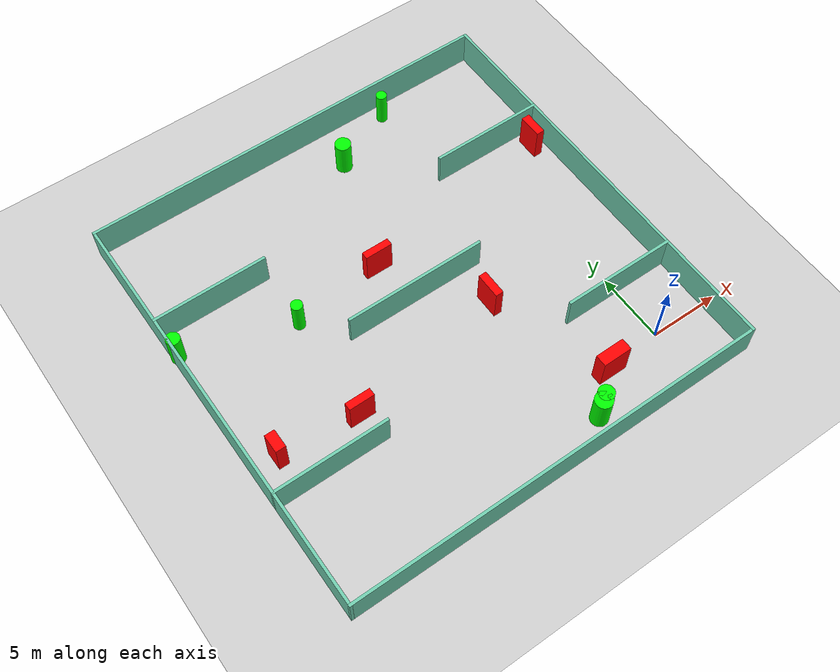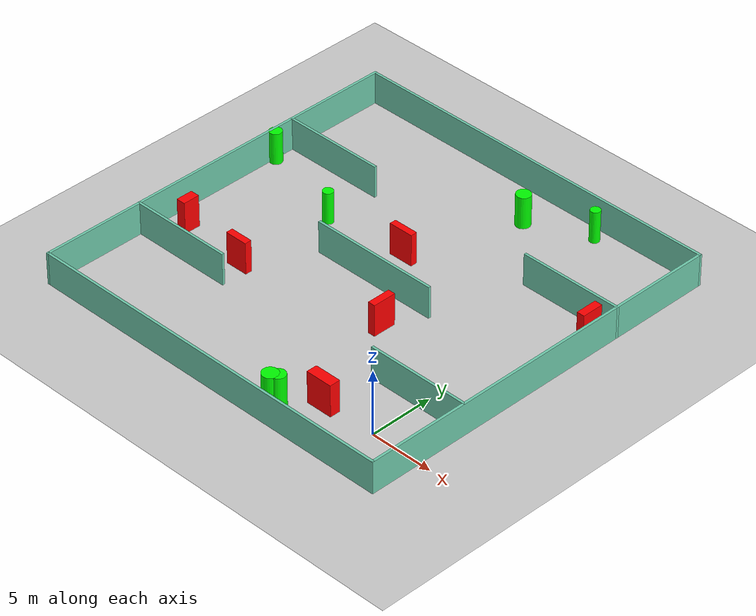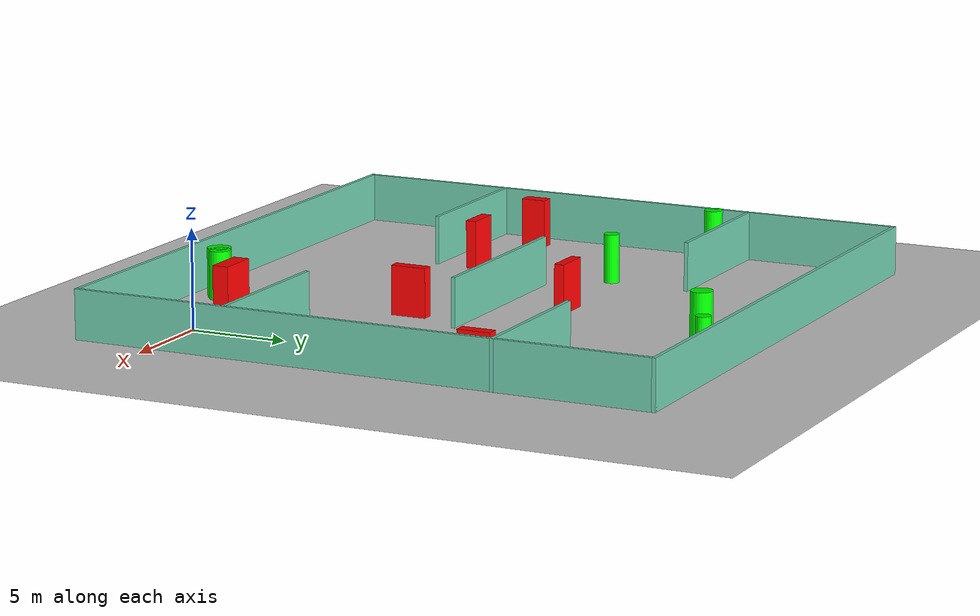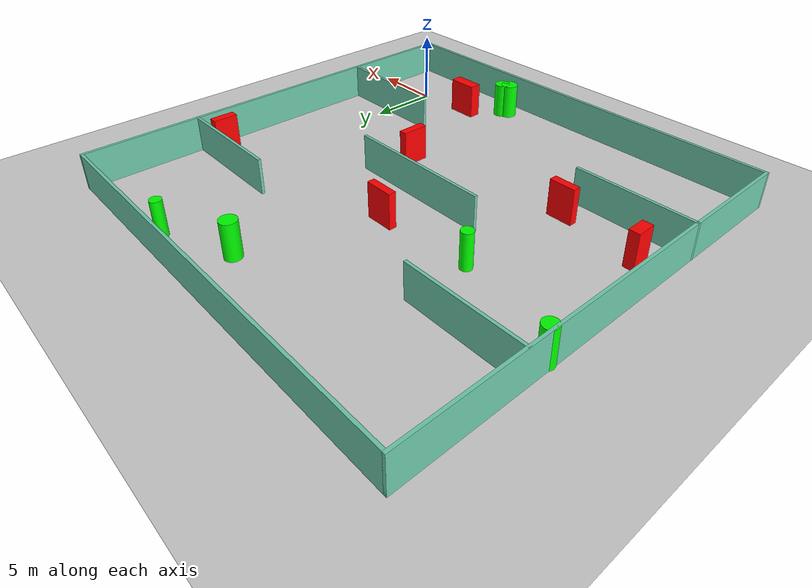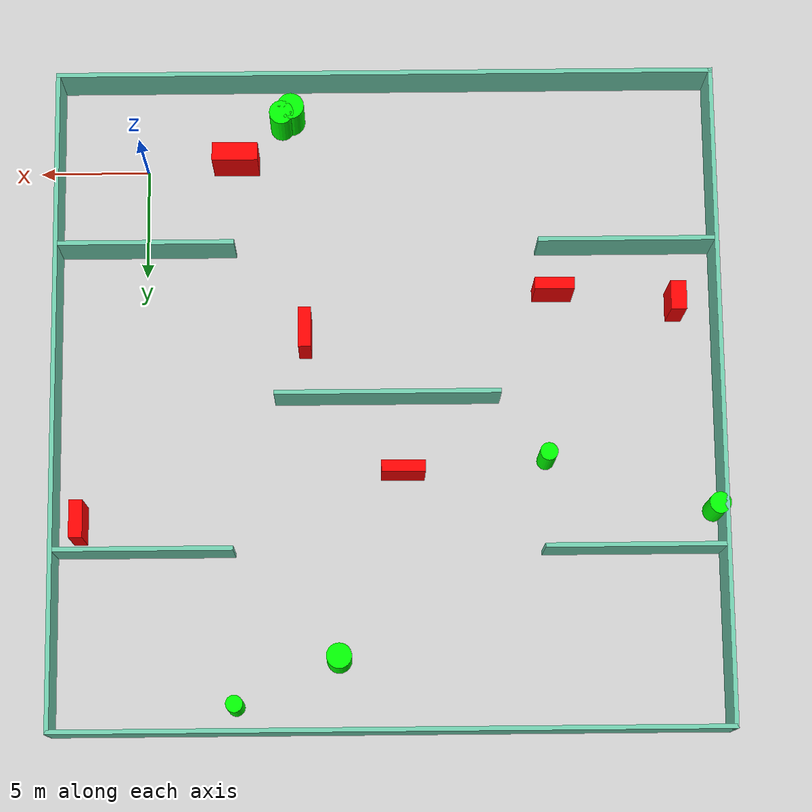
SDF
<sdf version="1.7">
 <world name="default">
  <light name="sun" type="directional">
   <pose>0 0 10 0 -0 0</pose>
   <diffuse>0.8 0.8 0.8 1</diffuse>
   <specular>0.2 0.2 0.2 1</specular>
   <attenuation>
    <range>1000</range>
    <constant>0.9</constant>
    <linear>0.01</linear>
    <quadratic>0.001</quadratic>
   </attenuation>
   <direction>-0.5 0.1 -0.9</direction>
   <spot><inner_angle>0</inner_angle><outer_angle>0</outer_angle><falloff>0</falloff></spot>
  </light>
  <model name="ground_plane">
   <static>1</static>
   <link name="link">
    <collision name="collision">
     <geometry><plane><normal>0 0 1</normal><size>100 100</size></plane></geometry>
     <surface>
      <contact><collide_bitmask>65535</collide_bitmask></contact>
      <friction><ode><mu>100</mu><mu2>50</mu2></ode></friction>
     </surface>
    </collision>
    <visual name="visual">
     <cast_shadows>0</cast_shadows>
     <geometry><plane><normal>0 0 1</normal><size>100 100</size></plane></geometry>
     <material>
      <script><uri>file://media/materials/scripts/gazebo.material</uri><name>Gazebo/Grey</name></script>
     </material>
    </visual>
   </link>
  </model>
  <gravity>0 0 -9.8</gravity>
  <magnetic_field>6e-06 2.3e-05 -4.2e-05</magnetic_field>
  <atmosphere type="adiabatic"/>
  <physics type="ode">
   <max_step_size>0.001</max_step_size>
   <real_time_factor>1</real_time_factor>
   <real_time_update_rate>1000</real_time_update_rate>
  </physics>
  <scene><ambient>0.4 0.4 0.4 1</ambient><background>0.7 0.7 0.7 1</background><shadows>1</shadows></scene>
  <spherical_coordinates>
   <surface_model>EARTH_WGS84</surface_model>
   <latitude_deg>0</latitude_deg>
   <longitude_deg>0</longitude_deg>
   <elevation>0</elevation>
   <heading_deg>0</heading_deg>
  </spherical_coordinates>
  <model name="my_base_walls">
   <link name="Wall_10">
    <collision name="Wall_10_Collision">
     <geometry><box><size>8.2 0.2 2.5</size></box></geometry>
     <pose>0 0 1.25 0 -0 0</pose>
    </collision>
    <visual name="Wall_10_Visual">
     <pose>0 0 1.25 0 -0 0</pose>
     <geometry><box><size>8.2 0.2 2.5</size></box></geometry>
     <material>
      <script><uri>file://media/materials/scripts/gazebo.material</uri><name>Gazebo/Grey</name></script>
      <ambient>0.435294 0.796078 0.67451 1</ambient>
     </material>
     <meta><layer>0</layer></meta>
    </visual>
    <pose>-11 -7 0 0 -0 0</pose>
   </link>
   <link name="Wall_12">
    <collision name="Wall_12_Collision">
     <geometry><box><size>8.2 0.2 2.5</size></box></geometry>
     <pose>0 0 1.25 0 -0 0</pose>
    </collision>
    <visual name="Wall_12_Visual">
     <pose>0 0 1.25 0 -0 0</pose>
     <geometry><box><size>8.2 0.2 2.5</size></box></geometry>
     <material>
      <script><uri>file://media/materials/scripts/gazebo.material</uri><name>Gazebo/Grey</name></script>
      <ambient>0.435294 0.796078 0.67451 1</ambient>
     </material>
     <meta><layer>0</layer></meta>
    </visual>
    <pose>-11 7 0 0 -0 0</pose>
   </link>
   <link name="Wall_14">
    <collision name="Wall_14_Collision">
     <geometry><box><size>8.2 0.2 2.5</size></box></geometry>
     <pose>0 0 1.25 0 -0 0</pose>
    </collision>
    <visual name="Wall_14_Visual">
     <pose>0 0 1.25 0 -0 0</pose>
     <geometry><box><size>8.2 0.2 2.5</size></box></geometry>
     <material>
      <script><uri>file://media/materials/scripts/gazebo.material</uri><name>Gazebo/Grey</name></script>
      <ambient>0.435294 0.796078 0.67451 1</ambient>
     </material>
     <meta><layer>0</layer></meta>
    </visual>
    <pose>11 7 0 0 -0 3.14159</pose>
   </link>
   <link name="Wall_16">
    <collision name="Wall_16_Collision">
     <geometry><box><size>10.2 0.2 2.5</size></box></geometry>
     <pose>0 0 1.25 0 -0 0</pose>
    </collision>
    <visual name="Wall_16_Visual">
     <pose>0 0 1.25 0 -0 0</pose>
     <geometry><box><size>10.2 0.2 2.5</size></box></geometry>
     <material>
      <script><uri>file://media/materials/scripts/gazebo.material</uri><name>Gazebo/Grey</name></script>
      <ambient>0.435294 0.796078 0.67451 1</ambient>
     </material>
     <meta><layer>0</layer></meta>
    </visual>
    <pose>0 0 0 0 -0 3.14159</pose>
   </link>
   <link name="Wall_2">
    <collision name="Wall_2_Collision">
     <geometry><box><size>30.2 0.2 2.5</size></box></geometry>
     <pose>0 0 1.25 0 -0 0</pose>
    </collision>
    <visual name="Wall_2_Visual">
     <pose>0 0 1.25 0 -0 0</pose>
     <geometry><box><size>30.2 0.2 2.5</size></box></geometry>
     <material>
      <script><uri>file://media/materials/scripts/gazebo.material</uri><name>Gazebo/Grey</name></script>
      <ambient>0.435294 0.796078 0.67451 1</ambient>
     </material>
     <meta><layer>0</layer></meta>
    </visual>
    <pose>0 -15 0 0 -0 3.14159</pose>
   </link>
   <link name="Wall_3">
    <collision name="Wall_3_Collision">
     <geometry><box><size>30.2 0.2 2.5</size></box></geometry>
     <pose>0 0 1.25 0 -0 0</pose>
    </collision>
    <visual name="Wall_3_Visual">
     <pose>0 0 1.25 0 -0 0</pose>
     <geometry><box><size>30.2 0.2 2.5</size></box></geometry>
     <material>
      <script><uri>file://media/materials/scripts/gazebo.material</uri><name>Gazebo/Grey</name></script>
      <ambient>0.435294 0.796078 0.67451 1</ambient>
     </material>
     <meta><layer>0</layer></meta>
    </visual>
    <pose>-15 0 0 0 -0 1.5708</pose>
   </link>
   <link name="Wall_4">
    <collision name="Wall_4_Collision">
     <geometry><box><size>30.2 0.2 2.5</size></box></geometry>
     <pose>0 0 1.25 0 -0 0</pose>
    </collision>
    <visual name="Wall_4_Visual">
     <pose>0 0 1.25 0 -0 0</pose>
     <geometry><box><size>30.2 0.2 2.5</size></box></geometry>
     <material>
      <script><uri>file://media/materials/scripts/gazebo.material</uri><name>Gazebo/Grey</name></script>
      <ambient>0.435294 0.796078 0.67451 1</ambient>
     </material>
     <meta><layer>0</layer></meta>
    </visual>
    <pose>0 15 0 0 -0 0</pose>
   </link>
   <link name="Wall_6">
    <collision name="Wall_6_Collision">
     <geometry><box><size>30.2 0.2 2.5</size></box></geometry>
     <pose>0 0 1.25 0 -0 0</pose>
    </collision>
    <visual name="Wall_6_Visual">
     <pose>0 0 1.25 0 -0 0</pose>
     <geometry><box><size>30.2 0.2 2.5</size></box></geometry>
     <material>
      <script><uri>file://media/materials/scripts/gazebo.material</uri><name>Gazebo/Grey</name></script>
      <ambient>0.435294 0.796078 0.67451 1</ambient>
     </material>
     <meta><layer>0</layer></meta>
    </visual>
    <pose>15 0 0 0 -0 1.5708</pose>
   </link>
   <link name="Wall_8">
    <collision name="Wall_8_Collision">
     <geometry><box><size>8.2 0.2 2.5</size></box></geometry>
     <pose>0 0 1.25 0 -0 0</pose>
    </collision>
    <visual name="Wall_8_Visual">
     <pose>0 0 1.25 0 -0 0</pose>
     <geometry><box><size>8.2 0.2 2.5</size></box></geometry>
     <material>
      <script><uri>file://media/materials/scripts/gazebo.material</uri><name>Gazebo/Grey</name></script>
      <ambient>0.435294 0.796078 0.67451 1</ambient>
     </material>
     <meta><layer>0</layer></meta>
    </visual>
    <pose>11 -7 0 0 -0 3.14159</pose>
   </link>
   <static>1</static>
   <pose>-11 11 0 0 -0 0</pose>
  </model>
  <model name="cylinder1">
   <static>1</static>
   <link name="link">
    <inertial>
     <mass>1</mass>
     <inertia><ixx>0.5</ixx><ixy>0</ixy><ixz>0</ixz><iyy>0.5</iyy><iyz>0</iyz><izz>1</izz></inertia>
    </inertial>
    <collision name="collision">
     <geometry><cylinder><radius>0.563916918336461</radius><length>2.5</length></cylinder></geometry>
    </collision>
    <visual name="visual">
     <geometry><cylinder><radius>0.563916918336461</radius><length>2.5</length></cylinder></geometry>
     <material>
      <ambient>0 1 0 1</ambient>
      <diffuse>0 1 0 1</diffuse>
      <specular>0.1 0.1 0.1 1</specular>
      <emissive>0 0 0 0</emissive>
     </material>
    </visual>
   </link>
   <pose>-8.745226525697907 22.787873536315026 1.25 0 0 0</pose>
  </model>
  <model name="cylinder2">
   <static>1</static>
   <link name="link">
    <inertial>
     <mass>1</mass>
     <inertia><ixx>0.5</ixx><ixy>0</ixy><ixz>0</ixz><iyy>0.5</iyy><iyz>0</iyz><izz>1</izz></inertia>
    </inertial>
    <collision name="collision">
     <geometry><cylinder><radius>0.48299650459823285</radius><length>2.5</length></cylinder></geometry>
    </collision>
    <visual name="visual">
     <geometry><cylinder><radius>0.48299650459823285</radius><length>2.5</length></cylinder></geometry>
     <material>
      <ambient>0 1 0 1</ambient>
      <diffuse>0 1 0 1</diffuse>
      <specular>0.1 0.1 0.1 1</specular>
      <emissive>0 0 0 0</emissive>
     </material>
    </visual>
   </link>
   <pose>-25.698874206717065 16.16852797347193 1.25 0 0 0</pose>
  </model>
  <model name="cylinder3">
   <static>1</static>
   <link name="link">
    <inertial>
     <mass>1</mass>
     <inertia><ixx>0.5</ixx><ixy>0</ixy><ixz>0</ixz><iyy>0.5</iyy><iyz>0</iyz><izz>1</izz></inertia>
    </inertial>
    <collision name="collision">
     <geometry><cylinder><radius>0.6094528079168212</radius><length>2.5</length></cylinder></geometry>
    </collision>
    <visual name="visual">
     <geometry><cylinder><radius>0.6094528079168212</radius><length>2.5</length></cylinder></geometry>
     <material>
      <ambient>0 1 0 1</ambient>
      <diffuse>0 1 0 1</diffuse>
      <specular>0.1 0.1 0.1 1</specular>
      <emissive>0 0 0 0</emissive>
     </material>
    </visual>
   </link>
   <pose>-6.6843875109344175 -2.428036210778997 1.25 0 0 0</pose>
  </model>
  <model name="cylinder4">
   <static>1</static>
   <link name="link">
    <inertial>
     <mass>1</mass>
     <inertia><ixx>0.5</ixx><ixy>0</ixy><ixz>0</ixz><iyy>0.5</iyy><iyz>0</iyz><izz>1</izz></inertia>
    </inertial>
    <collision name="collision">
     <geometry><cylinder><radius>0.5544207084066255</radius><length>2.5</length></cylinder></geometry>
    </collision>
    <visual name="visual">
     <geometry><cylinder><radius>0.5544207084066255</radius><length>2.5</length></cylinder></geometry>
     <material>
      <ambient>0 1 0 1</ambient>
      <diffuse>0 1 0 1</diffuse>
      <specular>0.1 0.1 0.1 1</specular>
      <emissive>0 0 0 0</emissive>
     </material>
    </visual>
   </link>
   <pose>-6.251016625709466 -2.131461413774503 1.25 0 0 0</pose>
  </model>
  <model name="cylinder5">
   <static>1</static>
   <link name="link">
    <inertial>
     <mass>1</mass>
     <inertia><ixx>0.5</ixx><ixy>0</ixy><ixz>0</ixz><iyy>0.5</iyy><iyz>0</iyz><izz>1</izz></inertia>
    </inertial>
    <collision name="collision">
     <geometry><cylinder><radius>0.38254730222692235</radius><length>2.5</length></cylinder></geometry>
    </collision>
    <visual name="visual">
     <geometry><cylinder><radius>0.38254730222692235</radius><length>2.5</length></cylinder></geometry>
     <material>
      <ambient>0 1 0 1</ambient>
      <diffuse>0 1 0 1</diffuse>
      <specular>0.1 0.1 0.1 1</specular>
      <emissive>0 0 0 0</emissive>
     </material>
    </visual>
   </link>
   <pose>-4.15429777759514 24.841743219921383 1.25 0 0 0</pose>
  </model>
  <model name="cylinder6">
   <static>1</static>
   <link name="link">
    <inertial>
     <mass>1</mass>
     <inertia><ixx>0.5</ixx><ixy>0</ixy><ixz>0</ixz><iyy>0.5</iyy><iyz>0</iyz><izz>1</izz></inertia>
    </inertial>
    <collision name="collision">
     <geometry><cylinder><radius>0.40134802989335744</radius><length>2.5</length></cylinder></geometry>
    </collision>
    <visual name="visual">
     <geometry><cylinder><radius>0.40134802989335744</radius><length>2.5</length></cylinder></geometry>
     <material>
      <ambient>0 1 0 1</ambient>
      <diffuse>0 1 0 1</diffuse>
      <specular>0.1 0.1 0.1 1</specular>
      <emissive>0 0 0 0</emissive>
     </material>
    </visual>
   </link>
   <pose>-18.161570056087022 13.798893868134648 1.25 0 0 0</pose>
  </model>
  <model name="box1">
   <static>1</static>
   <link name="link">
    <inertial>
     <mass>1</mass>
     <inertia><ixx>0.083</ixx><ixy>0</ixy><ixz>0</ixz><iyy>0.083</iyy><iyz>0</iyz><izz>0.083</izz></inertia>
    </inertial>
    <collision name="collision">
     <geometry><box><size>0.7160305056070955 1.306129234527161 2.5</size></box></geometry>
    </collision>
    <visual name="visual">
     <geometry><box><size>0.7160305056070955 1.306129234527161 2.5</size></box></geometry>
     <material>
      <ambient>1 0 0 1</ambient>
      <diffuse>1 0 0 1</diffuse>
      <specular>0.1 0.1 0.1 1</specular>
      <emissive>0 0 0 0</emissive>
     </material>
    </visual>
    <sensor name="my_contact" type="contact">
     <contact><collision>box_collision</collision><topic>__default_topic__</topic></contact>
    </sensor>
   </link>
   <pose>-24.181806839231093 6.663490362518745 1.25 0 0 0</pose>
  </model>
  <model name="box2">
   <static>1</static>
   <link name="link">
    <inertial>
     <mass>1</mass>
     <inertia><ixx>0.083</ixx><ixy>0</ixy><ixz>0</ixz><iyy>0.083</iyy><iyz>0</iyz><izz>0.083</izz></inertia>
    </inertial>
    <collision name="collision">
     <geometry><box><size>1.7999669989139675 0.5388737830816073 2.5</size></box></geometry>
    </collision>
    <visual name="visual">
     <geometry><box><size>1.7999669989139675 0.5388737830816073 2.5</size></box></geometry>
     <material>
      <ambient>1 0 0 1</ambient>
      <diffuse>1 0 0 1</diffuse>
      <specular>0.1 0.1 0.1 1</specular>
      <emissive>0 0 0 0</emissive>
     </material>
    </visual>
    <sensor name="my_contact" type="contact">
     <contact><collision>box_collision</collision><topic>__default_topic__</topic></contact>
    </sensor>
   </link>
   <pose>-18.60243379558062 6.06200073711819 1.25 0 0 0</pose>
  </model>
  <model name="box3">
   <static>1</static>
   <link name="link">
    <inertial>
     <mass>1</mass>
     <inertia><ixx>0.083</ixx><ixy>0</ixy><ixz>0</ixz><iyy>0.083</iyy><iyz>0</iyz><izz>0.083</izz></inertia>
    </inertial>
    <collision name="collision">
     <geometry><box><size>1.9663899260605828 0.5119018207151638 2.5</size></box></geometry>
    </collision>
    <visual name="visual">
     <geometry><box><size>1.9663899260605828 0.5119018207151638 2.5</size></box></geometry>
     <material>
      <ambient>1 0 0 1</ambient>
      <diffuse>1 0 0 1</diffuse>
      <specular>0.1 0.1 0.1 1</specular>
      <emissive>0 0 0 0</emissive>
     </material>
    </visual>
    <sensor name="my_contact" type="contact">
     <contact><collision>box_collision</collision><topic>__default_topic__</topic></contact>
    </sensor>
   </link>
   <pose>-11.667583513825155 14.384952612043211 1.25 0 0 0</pose>
  </model>
  <model name="box4">
   <static>1</static>
   <link name="link">
    <inertial>
     <mass>1</mass>
     <inertia><ixx>0.083</ixx><ixy>0</ixy><ixz>0</ixz><iyy>0.083</iyy><iyz>0</iyz><izz>0.083</izz></inertia>
    </inertial>
    <collision name="collision">
     <geometry><box><size>0.6050504645693036 1.6929385236787433 2.5</size></box></geometry>
    </collision>
    <visual name="visual">
     <geometry><box><size>0.6050504645693036 1.6929385236787433 2.5</size></box></geometry>
     <material>
      <ambient>1 0 0 1</ambient>
      <diffuse>1 0 0 1</diffuse>
      <specular>0.1 0.1 0.1 1</specular>
      <emissive>0 0 0 0</emissive>
     </material>
    </visual>
    <sensor name="my_contact" type="contact">
     <contact><collision>box_collision</collision><topic>__default_topic__</topic></contact>
    </sensor>
   </link>
   <pose>2.8849967035990858 16.630413847048032 1.25 0 0 0</pose>
  </model>
  <model name="box5">
   <static>1</static>
   <link name="link">
    <inertial>
     <mass>1</mass>
     <inertia><ixx>0.083</ixx><ixy>0</ixy><ixz>0</ixz><iyy>0.083</iyy><iyz>0</iyz><izz>0.083</izz></inertia>
    </inertial>
    <collision name="collision">
     <geometry><box><size>2.0914849243339297 0.8359162838323868 2.5</size></box></geometry>
    </collision>
    <visual name="visual">
     <geometry><box><size>2.0914849243339297 0.8359162838323868 2.5</size></box></geometry>
     <material>
      <ambient>1 0 0 1</ambient>
      <diffuse>1 0 0 1</diffuse>
      <specular>0.1 0.1 0.1 1</specular>
      <emissive>0 0 0 0</emissive>
     </material>
    </visual>
    <sensor name="my_contact" type="contact">
     <contact><collision>box_collision</collision><topic>__default_topic__</topic></contact>
    </sensor>
   </link>
   <pose>-4.120732088515027 -0.28419403626923057 1.25 0 0 0</pose>
  </model>
  <model name="box6">
   <static>1</static>
   <link name="link">
    <inertial>
     <mass>1</mass>
     <inertia><ixx>0.083</ixx><ixy>0</ixy><ixz>0</ixz><iyy>0.083</iyy><iyz>0</iyz><izz>0.083</izz></inertia>
    </inertial>
    <collision name="collision">
     <geometry><box><size>0.5659512829226931 1.8292737557898047 2.5</size></box></geometry>
    </collision>
    <visual name="visual">
     <geometry><box><size>0.5659512829226931 1.8292737557898047 2.5</size></box></geometry>
     <material>
      <ambient>1 0 0 1</ambient>
      <diffuse>1 0 0 1</diffuse>
      <specular>0.1 0.1 0.1 1</specular>
      <emissive>0 0 0 0</emissive>
     </material>
    </visual>
    <sensor name="my_contact" type="contact">
     <contact><collision>box_collision</collision><topic>__default_topic__</topic></contact>
    </sensor>
   </link>
   <pose>-7.281682147581531 7.99520690932335 1.25 0 0 0</pose>
  </model>
 </world>
</sdf>
